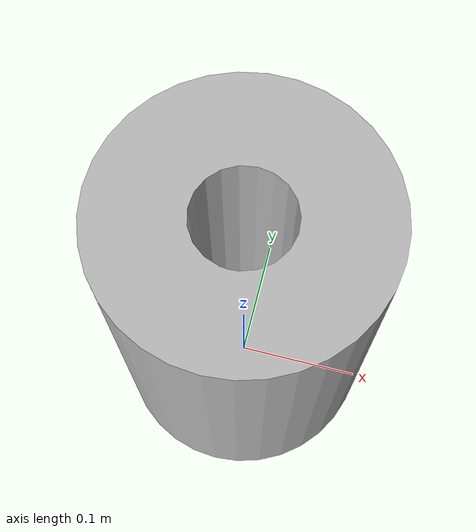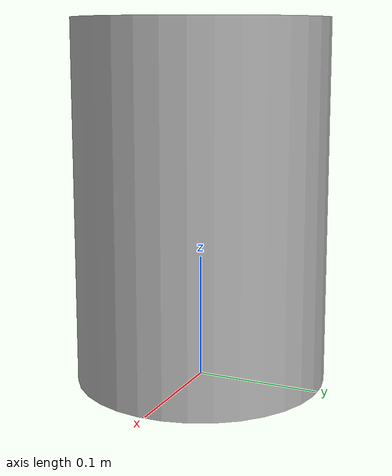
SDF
<sdf version='1.6'>
  <model name='Cone75'>
    <link name='Cone75'>
      <pose frame=''>0 0 0 0 -0 0</pose>
      <inertial>
        <pose frame=''>0 0 0.14605 0 -0 0</pose>
        <mass>65.156</mass>
        <inertia>
          <ixx>0.65128</ixx>
          <ixy>1.41574e-33</ixy>
          <ixz>2.36906e-33</ixz>
          <iyy>0.65128</iyy>
          <iyz>-1.47956e-17</iyz>
          <izz>0.376023</izz>
        </inertia>
      </inertial>
      <collision name='Cone75_collision'>
	<!-- Change max_vel and/or min_depth to keep cones from "bouncing" -->
	<surface>
	  <contact>
	    <ode>
	      <min_depth>0.001</min_depth>
	    </ode>
	  </contact>
	</surface>
        <pose frame=''>0 0 0 1.5708 -0 0</pose>
        <geometry>
          <mesh>
            <scale>1 1 1</scale>
            <uri>model://Cone75/meshes/Cone75.STL</uri>
          </mesh>
        </geometry>
      </collision>
      <visual name='Cone_75_percent_visual'>
        <pose frame=''>0 0 0 1.5708 -0 0</pose>
        <geometry>
          <mesh>
            <scale>1 1 1</scale>
            <uri>model://Cone75/meshes/Cone75.STL</uri>
          </mesh>
        </geometry>
      </visual>
    </link>
  </model>
</sdf>
